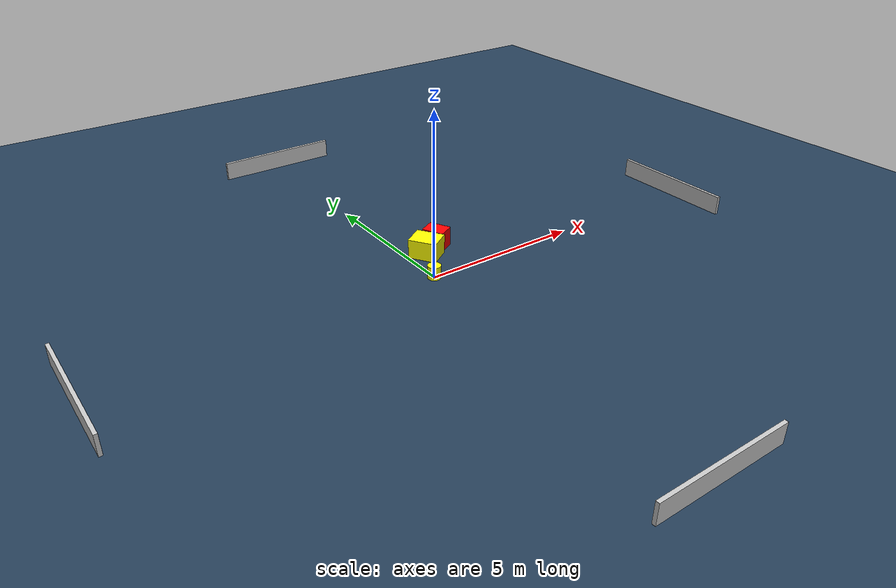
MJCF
<?xml version="1.0" ?>
<mujoco model="generated_environment">
  <option timestep="0.01" integrator="RK4" cone="elliptic"/>
  <default>
    <geom density="1"/>
  </default>
  <asset>
    <texture builtin="gradient" height="3072" name="skybox" rgb1="0.3 0.5 0.7" rgb2="0 0 0" type="skybox" width="512"/>
    <texture builtin="checker" height="300" name="groundplane" rgb1="0.2 0.3 0.4" rgb2="0.1 0.2 0.3" type="2d" width="300"/>
    <material name="groundplane" reflectance="0.2" texrepeat="5 5" texture="groundplane"/>
  </asset>
  <worldbody>
    <light dir="0 0 -1" directional="true" pos="0 0 1.5"/>
    <geom condim="3" friction="0.5 0.005 0.001" material="groundplane" name="floor" pos="0 0 0" size="0 0 0.05" type="plane"/>
    <body name="walls">
      <geom name="wall_1" condim="4" pos="-10.0 0.0 0.3" rgba="0.800000011920929 0.800000011920929 0.800000011920929 1.0" size="0.05 2.0 0.3" type="box"/>
      <geom name="wall_2" condim="4" pos="10.0 0.0 0.3" rgba="0.800000011920929 0.800000011920929 0.800000011920929 1.0" size="0.05 2.0 0.3" type="box"/>
      <geom name="wall_3" condim="4" pos="0.0 -10.0 0.3" rgba="0.800000011920929 0.800000011920929 0.800000011920929 1.0" size="2.0 0.05 0.3" type="box"/>
      <geom name="wall_4" condim="4" pos="0.0 10.0 0.3" rgba="0.800000011920929 0.800000011920929 0.800000011920929 1.0" size="2.0 0.05 0.3" type="box"/>
    </body>
    <body name="robot">
      <joint name="joint_x" type="slide" pos="0 0 0" axis="1 0 0"/>
      <joint name="joint_y" type="slide" pos="0 0 0" axis="0 1 0"/>
      <geom name="robot" type="cylinder" pos="0.0 0.0 0.2" size="0.2 0.2 0.0" mass="5.0" friction="1.0 0.005 0.0001" condim="4" rgba="1.0 1.0 0.0 1.0"/>
    </body>
    <body name="obstacle_1_movable">
      <geom name="obstacle_1_movable" condim="4" pos="0.5845604714902386 1.2288048729362655 0.3" euler="0 0 303.3099876919649" friction="0.0 0.005 0.001" rgba="1.0 1.0 0.0 1.0" size="0.4394484269257439 0.3635502750031616 0.3" type="box" mass="0.1"/>
      <joint type="free"/>
    </body>
    <body name="obstacle_2_static">
      <geom name="obstacle_2_static" condim="4" pos="1.175677026550901 1.5444180589596088 0.3" euler="0 0 207.42474266496305" friction="0.0 0.005 0.001" rgba="1.0 0.0 0.0 1.0" size="0.26631365010960406 0.34694662696007866 0.3" type="box"/>
    </body>
  </worldbody>
  <actuator>
    <motor name="actuator_x" joint="joint_x" gear="1" ctrlrange="-1 1"/>
    <motor name="actuator_y" joint="joint_y" gear="1" ctrlrange="-1 1"/>
  </actuator>
</mujoco>
